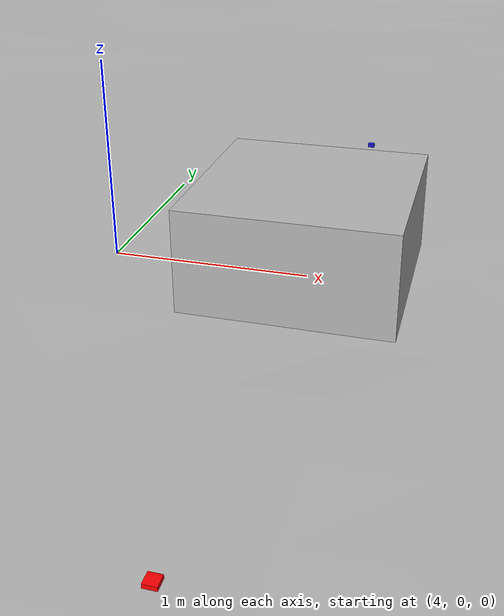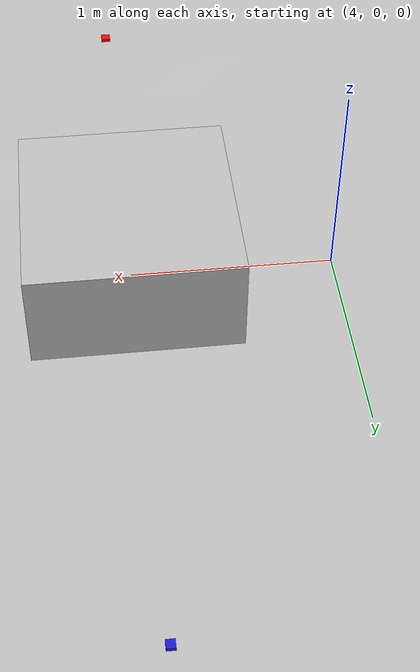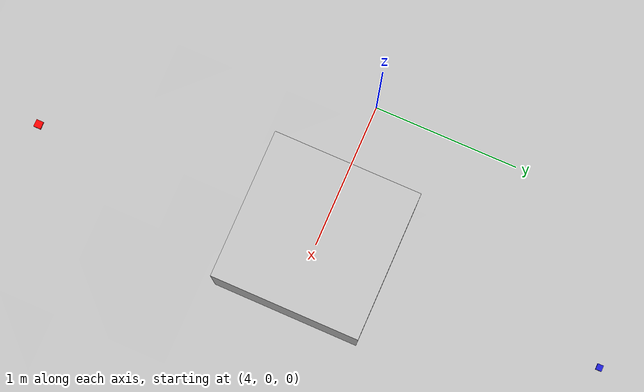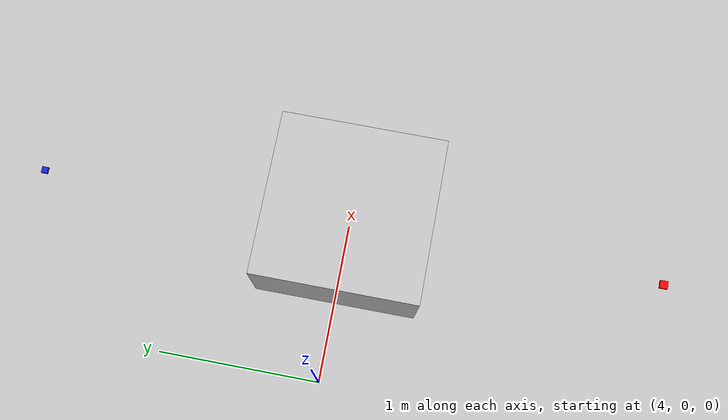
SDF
<?xml version="1.0" ?>
<sdf version="1.6">
  <world name="sand">
      <gravity>0 0 -9.8</gravity>
    <magnetic_field>6e-06 2.3e-05 -4.2e-05</magnetic_field>
    <atmosphere type="adiabatic"/>
    <physics name="default_physics" default="0" type="ode">
      <max_step_size>0.001</max_step_size>
      <real_time_factor>1</real_time_factor>
      <real_time_update_rate>1000</real_time_update_rate>
    </physics>
    <scene>
      <ambient>0.4 0.4 0.4 1</ambient>
      <background>0.7 0.7 0.7 1</background>
      <shadows>1</shadows>
    </scene>
    <spherical_coordinates>
      <surface_model>EARTH_WGS84</surface_model>
      <latitude_deg>0</latitude_deg>
      <longitude_deg>0</longitude_deg>
      <elevation>0</elevation>
      <heading_deg>0</heading_deg>
    </spherical_coordinates>
    <!-- Global light source -->
    <include>
      <uri>model://sun</uri>
    </include>

    <!-- Heightmap -->
    <include>
      <uri>model://sand_heightmap</uri>
      <pose>0 0 0 0 0 0</pose>
    </include>

    <include>
      <uri>model://red_cube</uri>
      <pose>5 -2 0 0 0 0</pose>
    </include>
    <include>
      <uri>model://green_cube</uri>
      <pose>5 0 0 0 0 0</pose>
    </include>
    <include>
      <uri>model://blue_cube</uri>
      <pose>5 2 0 0 0 0</pose>
    </include>

  </world>
</sdf>

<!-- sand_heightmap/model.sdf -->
<sdf version="1.6">
  <model name="sand_heightmap">
    <static>true</static>
    <link name="link">
      <collision name="ground">
        <pose>0 0 0 0 0 0</pose>
        <geometry>
          <mesh><uri>model://sand_heightmap/meshes/heightmap.dae</uri></mesh>
        </geometry>
      </collision>

      <visual name="ground_sand">
        <cast_shadows>true</cast_shadows>
        <pose>0 0 0 0 0 0</pose>
        <geometry>
          <mesh><uri>model://sand_heightmap/meshes/heightmap.dae</uri></mesh>
        </geometry>
        <material>
          <script>
            <uri>file://Media/materials/scripts/sand.material</uri>
            <name>SandAndStones</name>
          </script>
          <emissive>
            0.6 0.6 0.6 1.0
          </emissive>
        </material>
      </visual>
    </link>
  </model>
</sdf>

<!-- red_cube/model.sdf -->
<sdf version="1.6">
  <model name="red_cube">
    <static>false</static>
    <link name="link">
      <inertial>
        <mass>0.100</mass>
        <inertia>
          <ixx>0.0000417</ixx>
          <ixy>0</ixy>
          <ixz>0</ixz>
          <iyy>0.0000417</iyy>
          <iyz>0</iyz>
          <izz>0.0000417</izz>
        </inertia>
      </inertial>
      <collision name="collision">
        <geometry>
          <box>
            <size>0.05 0.05 0.05</size>
          </box>
        </geometry>
        <surface>
          <friction>
            <ode>
              <mu>5.0</mu>
              <mu2>5.0</mu2>
              <slip1>0.0001</slip1>
              <slip2>0.0001</slip2>
            </ode>
          </friction>
          <contact>
            <ode>
              <kp>1e5</kp>
              <kd>10</kd>
              <max_vel>0.1</max_vel>
              <min_depth>0.001</min_depth>
            </ode>
          </contact>
        </surface>
      </collision>
      <visual name="visual">
        <geometry>
          <box>
            <size>0.05 0.05 0.05</size>
          </box>
        </geometry>
        <material>
          <ambient>1.0 0.0 0.0 1</ambient>
          <diffuse>1.0 0.0 0.0 1</diffuse>
          <specular>0.5 0.5 0.5 1</specular>
        </material>
      </visual>
    </link>
  </model>
</sdf>

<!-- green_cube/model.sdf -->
<sdf version="1.4">
  <model name="green_cube">
    <pose>0 0 0.0 0 0 0</pose>
    <static>false</static>
    <link name="cube_link">
      <inertial>
        <mass>0.001</mass>
        <inertia> <!-- inertias are tricky to compute -->
          <!-- http://gazebosim.org/tutorials?tut=inertia&cat=build_robot -->
          <ixx>0.000083</ixx>       <!-- for a box: ixx = 0.083 * mass * (y*y + z*z) -->
          <ixy>0.0</ixy>         <!-- for a box: ixy = 0 -->
          <ixz>0.0</ixz>         <!-- for a box: ixz = 0 -->
          <iyy>0.000083</iyy>       <!-- for a box: iyy = 0.083 * mass * (x*x + z*z) -->
          <iyz>0.0</iyz>         <!-- for a box: iyz = 0 -->
          <izz>0.000083</izz>       <!-- for a box: izz = 0.083 * mass * (x*x + y*y) -->
        </inertia>
      </inertial>
      <collision name="collision">
        <geometry>
          <box>
            <size>1 1 1</size>
          </box>
        </geometry>
      </collision>
      <visual name="visual">
        <geometry>
          <box>
            <size>1 1 1</size>
          </box>
        </geometry>
      </visual>
    </link>
    <gazebo reference="cube_link">
      <material>Gazebo/Green</material>
    </gazebo>
  </model>
</sdf>

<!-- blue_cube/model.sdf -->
<sdf version="1.9">
  <model name="blue_cube">
    <pose>0 0 0 0 0 0</pose>
    <link name="link">
      <inertial><mass>0.1</mass><inertia><ixx>2.13e-5</ixx><iyy>2.13e-5</iyy><izz>2.13e-5</izz></inertia></inertial>
      <collision name="collision"><geometry><box><size>0.04 0.04 0.04</size></box></geometry><surface><friction><ode><mu>0.6</mu><mu2>0.6</mu2></ode></friction></surface></collision>
      <visual name="visual"><geometry><box><size>0.04 0.04 0.04</size></box></geometry><material><ambient>0.1 0.1 0.8 1</ambient><diffuse>0.1 0.1 0.8 1</diffuse></material></visual>
    </link>
  </model>
</sdf>
